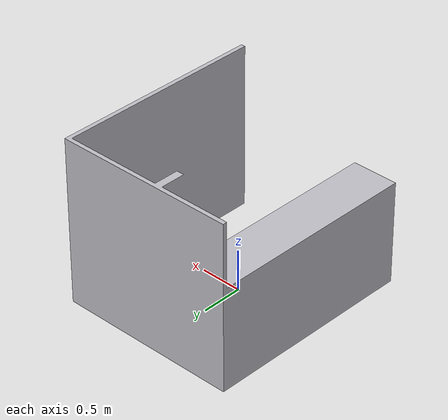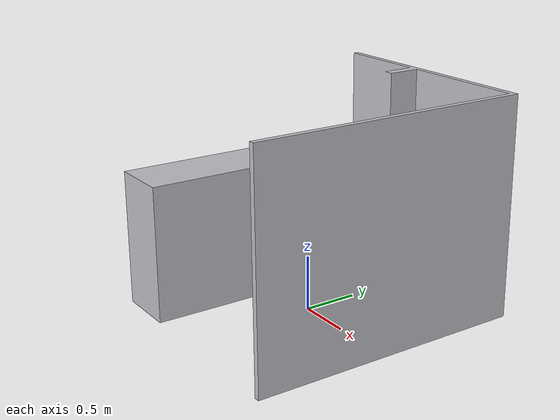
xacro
<?xml version="1.0" ?>
<robot name="env" xmlns:xacro="http://www.ros.org/wiki/xacro">

  <link name="walls_link">
    <inertial>
      <origin rpy="0 0 0" xyz="-0.04720668354347962 0.018066716841360707 0.07080670574116438"/>
      <mass value="17.370821533898557"/>
      <inertia ixx="0.142346" ixy="-0.012291" ixz="-0.015362" iyy="0.109318" iyz="-0.007628" izz="0.181525"/>
    </inertial>
    <visual>
      <origin rpy="0 0 0" xyz="0 0 0"/>
      <geometry>
        <mesh filename="package://hc10_ros/meshes/env/walls.stl" scale="0.01 0.01 0.01"/>
      </geometry>
      <material name="silver"/>
    </visual>
    <collision>
      <origin rpy="0 0 0" xyz="0 0 0"/>
      <geometry>
        <mesh filename="package://hc10_ros/meshes/env/walls.stl" scale="0.01 0.01 0.01"/>
      </geometry>
    </collision>
  </link>

</robot>
